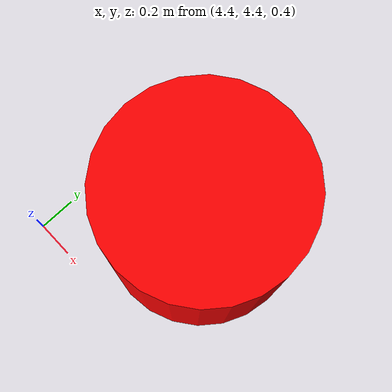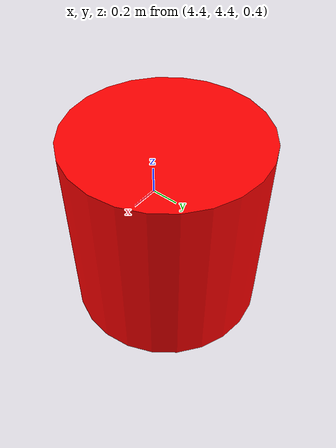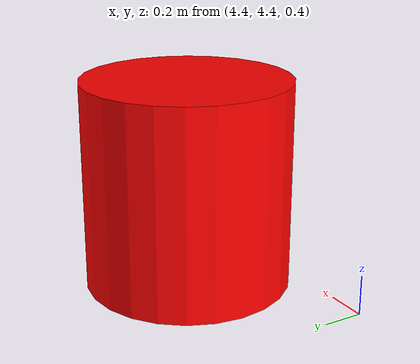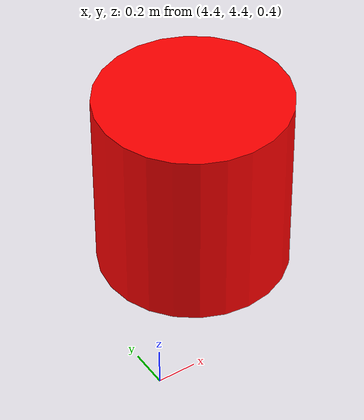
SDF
<?xml version="1.0"?>
<sdf version="1.6">
  <world name="default">
    <!-- Define the physics engine -->
    <physics name="default_physics" type="ode">
      <gravity>0 0 -9.81</gravity>
    </physics>

    <!-- Add a moving target -->
    <model name="moving_target">
      <pose>5 5 1 0 0 0</pose>  <!-- initial position -->
      <link name="link">
        <visual>
          <geometry>
            <cylinder>
              <radius>0.5</radius>
              <length>1.0</length>
            </cylinder>
          </geometry>
          <material>
            <ambient>1 0 0 1</ambient>  <!-- red target -->
          </material>
        </visual>
      </link>
    </model>

    <!-- Define a simple ground plane -->
    <model name="ground_plane">
      <pose>0 0 0 0 0 0</pose>
      <static>true</static>
      <link name="link">
        <collision>
          <geometry>
            <plane>
              <normal>0 0 1</normal>
              <size>10 10</size>
            </plane>
          </geometry>
        </collision>
      </link>
    </model>
  </world>
</sdf>
